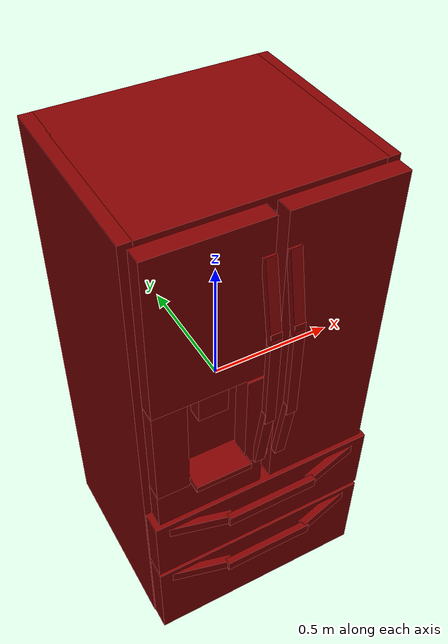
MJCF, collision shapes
<mujoco model="model">
  <compiler angle="radian"/>
  <asset>
    <mesh file="visuals/Body001.obj" name="Body001_vis"/>
    <mesh file="visuals/Body001_Clear.obj" name="Body001_Clear_vis"/>
    <mesh file="visuals/Door001.obj" name="Door001_vis"/>
    <mesh file="visuals/Door002.obj" name="Door002_vis"/>
    <mesh file="visuals/Door002_Clear.obj" name="Door002_Clear_vis"/>
    <mesh file="visuals/Drawer001.obj" name="Drawer001_vis"/>
    <mesh file="visuals/Drawer002.obj" name="Drawer002_vis"/>
    <mesh file="visuals/Drawer003.obj" name="Drawer003_vis"/>
    <texture file="visuals/T_BC001.png" name="Body001_material" type="2d"/>
    <material name="Body001_material" rgba="1 1 1 1.0" texture="Body001_material" shininess="0.2512328028678894" specular="0.3103448502657381"/>
    <material name="Body001_Clear_material" rgba="0.7829207181930542 0.7829207181930542 0.7829207181930542 0.5" shininess="0.2512328028678894" specular="0.3103448502657381"/>
    <texture file="visuals/T_BC001.png" name="Door001_material" type="2d"/>
    <material name="Door001_material" rgba="1 1 1 1.0" texture="Door001_material" shininess="0.2512328028678894" specular="0.3103448502657381"/>
    <texture file="visuals/T_BC001.png" name="Door002_material" type="2d"/>
    <material name="Door002_material" rgba="1 1 1 1.0" texture="Door002_material" shininess="0.2512328028678894" specular="0.3103448502657381"/>
    <material name="Door002_Clear_material" rgba="0.7829207181930542 0.7829207181930542 0.7829207181930542 0.5" shininess="0.2512328028678894" specular="0.3103448502657381"/>
    <texture file="visuals/T_BC001.png" name="Drawer001_material" type="2d"/>
    <material name="Drawer001_material" rgba="1 1 1 1.0" texture="Drawer001_material" shininess="0.2512328028678894" specular="0.3103448502657381"/>
    <texture file="visuals/T_BC001.png" name="Drawer002_material" type="2d"/>
    <material name="Drawer002_material" rgba="1 1 1 1.0" texture="Drawer002_material" shininess="0.2512328028678894" specular="0.3103448502657381"/>
    <texture file="visuals/T_BC001.png" name="Drawer003_material" type="2d"/>
    <material name="Drawer003_material" rgba="1 1 1 1.0" texture="Drawer003_material" shininess="0.2512328028678894" specular="0.3103448502657381"/>
  </asset>
  <default>
    <default class="visual">
      <geom conaffinity="0" contype="0" group="1" type="mesh"/>
    </default>
    <default class="collision">
      <geom group="0" rgba="0.5 0 0 0.5"/>
    </default>
    <default class="spawn">
      <geom group="0" rgba="1 1 1 0.5" contype="0" conaffinity="0"/>
      <site group="0" rgba="1 1 1 0.5"/>
    </default>
    <default class="region">
      <geom group="1" conaffinity="0" contype="0" rgba="0 1 0 0"/>
    </default>
  </default>
  <worldbody>
    <body>
      <body name="object">
        <geom mesh="Body001_vis" type="mesh" solimp="0.998 0.998 0.001" solref="0.001 1" density="100" friction="0.95 0.3 0.1" class="visual" material="Body001_material"/>
        <geom class="collision" type="box" pos="-0.43239063024520874 0.0789387971162796 2.281851152474701e-09" size="0.025050994008779526 0.37569648027420044 0.9743537306785583" quat="1.0 0.0 0.0 0.0"/>
        <geom class="collision" type="box" pos="0.43343523144721985 0.0789387971162796 2.281851152474701e-09" size="0.024006403982639313 0.37569648027420044 0.9743537306785583" quat="1.0 0.0 0.0 0.0"/>
        <geom class="collision" type="box" pos="0.002809131983667612 0.35418015718460083 2.281851152474701e-09" size="0.4140954911708832 0.10045510530471802 0.9743537306785583" quat="1.0 0.0 0.0 0.0"/>
        <geom class="collision" type="box" pos="0.0028091389685869217 0.0789387971162796 0.9467322826385498" size="0.4140954911708832 0.37569648027420044 0.027621673420071602" quat="1.0 0.0 0.0 0.0"/>
        <geom class="collision" type="box" pos="0.002809138037264347 0.0789387971162796 -0.21346165239810944" size="0.4140954911708832 0.37569648027420044 0.03919969126582146" quat="1.0 0.0 0.0 0.0"/>
        <geom class="collision" type="box" pos="0.002809138037264347 0.0789387971162796 -0.5391851663589478" size="0.4140954911708832 0.37569648027420044 0.04141000285744667" quat="1.0 0.0 0.0 0.0"/>
        <geom class="collision" type="box" pos="0.0028091371059417725 0.0789387971162796 -0.9519866108894348" size="0.4140954911708832 0.37569648027420044 0.022367125377058983" quat="1.0 0.0 0.0 0.0"/>
        <geom class="collision" type="box" pos="-0.3977801501750946 0.02478324994444847 0.5585342645645142" size="0.0075620138086378574 0.23571060597896576 0.027275606989860535" quat="1.0 0.0 0.0 0.0"/>
        <geom class="collision" type="box" pos="-0.3977801501750946 0.02478325366973877 0.3838809132575989" size="0.0075620138086378574 0.23571060597896576 0.027275606989860535" quat="1.0 0.0 0.0 0.0"/>
        <geom class="collision" type="box" pos="-0.3977801501750946 0.02478325366973877 -0.0023946017026901245" size="0.0075620138086378574 0.23571060597896576 0.027275606989860535" quat="1.0 0.0 0.0 0.0"/>
        <geom class="collision" type="box" pos="-0.3977801501750946 0.02478324994444847 0.17225873470306396" size="0.0075620138086378574 0.23571060597896576 0.027275606989860535" quat="1.0 0.0 0.0 0.0"/>
        <geom class="collision" type="box" pos="0.39763379096984863 0.02478324994444847 0.17225873470306396" size="0.0075620138086378574 0.23571060597896576 0.027275606989860535" quat="1.0 0.0 0.0 0.0"/>
        <geom class="collision" type="box" pos="0.39763379096984863 0.02478325366973877 -0.0023946017026901245" size="0.0075620138086378574 0.23571060597896576 0.027275606989860535" quat="1.0 0.0 0.0 0.0"/>
        <geom class="collision" type="box" pos="0.39763379096984863 0.02478325366973877 0.3838809132575989" size="0.0075620138086378574 0.23571060597896576 0.027275606989860535" quat="1.0 0.0 0.0 0.0"/>
        <geom class="collision" type="box" pos="0.39763379096984863 0.02478324994444847 0.5585342645645142" size="0.0075620138086378574 0.23571060597896576 0.027275606989860535" quat="1.0 0.0 0.0 0.0"/>
        <geom class="collision" type="box" pos="-0.00038769468665122986 0.02478324994444847 0.5585342645645142" size="0.0075620138086378574 0.23571060597896576 0.027275606989860535" quat="1.0 0.0 0.0 0.0"/>
        <geom class="collision" type="box" pos="-0.0003876984119415283 0.02478325366973877 0.17134985327720642" size="0.0075620138086378574 0.23571060597896576 0.027275606989860535" quat="1.0 0.0 0.0 0.0"/>
        <geom class="collision" type="box" pos="0.0028091389685869217 -0.0073231663554906845 0.9075626134872437" size="0.15944154560565948 0.160664901137352 0.019210800528526306" quat="1.0 0.0 0.0 0.0"/>
        <body name="Body001_Clear">
          <geom mesh="Body001_Clear_vis" type="mesh" solimp="0.998 0.998 0.001" solref="0.001 1" density="100" friction="0.95 0.3 0.1" class="visual" material="Body001_Clear_material"/>
          <geom class="collision" type="box" pos="0.0006654927274212241 0.05615266412496567 0.5888007879257202" size="0.40937232971191406 0.19231247901916504 0.005514178425073624" quat="1.0 0.0 0.0 0.0"/>
          <geom class="collision" type="box" pos="0.0006654927274212241 0.05615266412496567 0.20450350642204285" size="0.40937232971191406 0.19231247901916504 0.005514178425073624" quat="1.0 0.0 0.0 0.0"/>
        </body>
        <body name="Door001">
          <joint axis="0.0 0.0 -1.0" pos="-0.40305250883102417 -0.34666505455970764 0.37841489911079407" limited="true" name="Door001_joint" range="0.0 1.5707963267948966" type="hinge" damping="1" frictionloss="1" armature=".01" stiffness="0.05"/>
          <geom mesh="Door001_vis" type="mesh" solimp="0.998 0.998 0.001" solref="0.001 1" density="100" friction="0.95 0.3 0.1" class="visual" material="Door001_material"/>
          <geom class="collision" type="box" pos="-0.22949627041816711 -0.3516943156719208 0.6658487319946289" size="0.20845761895179749 0.03155607730150223 0.3085051476955414" quat="1.0 0.0 0.0 0.0"/>
          <geom class="collision" type="box" pos="-0.043255966156721115 -0.4387055039405823 0.39825060963630676" size="0.020025629550218582 0.012181313708424568 0.20290839672088623" quat="1.0 0.0 0.0 0.0"/>
          <geom class="collision" type="box" pos="-0.04368552938103676 -0.4142951965332031 0.6992678642272949" size="0.15277734398841858 0.012184272520244122 0.020025623962283134" quat="0.7036940455436707 -0.06938757747411728 0.7036941051483154 -0.06938757747411728"/>
          <geom class="collision" type="box" pos="-0.04342835023999214 -0.4153255522251129 0.08840882033109665" size="0.15271838009357452 0.012182695791125298 0.020025666803121567" quat="0.705168604850769 0.05231887102127075 0.7051685452461243 0.05231887102127075"/>
          <geom class="collision" type="box" pos="-0.22737178206443787 -0.2903779447078705 0.37775924801826477" size="0.14489077031612396 0.020536476746201515 0.5126675367355347" quat="1.0 0.0 0.0 0.0"/>
          <geom class="collision" type="box" pos="-0.22983205318450928 -0.2701058089733124 0.6600713729858398" size="0.16895322501659393 0.046253252774477005 0.24985185265541077" quat="1.0 0.0 0.0 0.0"/>
          <geom class="collision" type="box" pos="-0.22984567284584045 -0.35054901242256165 -0.13871297240257263" size="0.20880651473999023 0.030410680919885635 0.08287671208381653" quat="1.0 0.0 0.0 0.0"/>
          <geom class="collision" type="box" pos="-0.3748109042644501 -0.35059499740600586 0.14636197686195374" size="0.0626794621348381 0.03045680746436119 0.2097291201353073" quat="1.0 0.0 0.0 0.0"/>
          <geom class="collision" type="box" pos="-0.052935484796762466 -0.35635867714881897 0.14636196196079254" size="0.04649600014090538 0.03622039034962654 0.20972852408885956" quat="1.0 0.0 0.0 0.0"/>
          <geom class="collision" type="box" pos="-0.2095235139131546 -0.33079081773757935 0.3130360245704651" size="0.054677631705999374 0.035663824528455734 0.07370862364768982" quat="1.0 0.0 0.0 0.0"/>
          <geom class="collision" type="box" pos="-0.20344950258731842 -0.3709101676940918 -0.026633242145180702" size="0.10819727182388306 0.06406967341899872 0.0124518359079957" quat="1.0 0.0 0.0 0.0"/>
          <geom class="collision" type="box" pos="-0.2095235139131546 -0.3115566074848175 0.21992382407188416" size="0.02860577218234539 0.014528387226164341 0.030026836320757866" quat="1.0 0.0 0.0 0.0"/>
          <geom class="collision" type="box" pos="-0.23664847016334534 -0.21018823981285095 0.13197873532772064" size="0.14483046531677246 0.0038390583358705044 0.044328365474939346" quat="1.0 0.0 0.0 0.0"/>
          <geom class="collision" type="box" pos="-0.23664847016334534 -0.24343398213386536 0.09350551664829254" size="0.14483046531677246 0.030184507369995117 0.005856771487742662" quat="1.0 0.0 0.0 0.0"/>
          <geom class="collision" type="box" pos="-0.37607118487358093 -0.2415694296360016 0.13457582890987396" size="0.005407749209553003 0.03460775688290596 0.04692563787102699" quat="1.0 0.0 0.0 0.0"/>
          <geom class="collision" type="box" pos="-0.09749902784824371 -0.2415694296360016 0.13457582890987396" size="0.005407749209553003 0.03460775688290596 0.046925727277994156" quat="1.0 0.0 0.0 0.0"/>
        </body>
        <body name="Door002">
          <joint axis="0.0 0.0 1.0" pos="0.41050735116004944 -0.3474642038345337 0.3784147799015045" limited="true" name="Door002_joint" range="0.0 1.5707963267948966" type="hinge" damping="1" frictionloss="1" armature=".01" stiffness="0.05"/>
          <geom mesh="Door002_vis" type="mesh" solimp="0.998 0.998 0.001" solref="0.001 1" density="100" friction="0.95 0.3 0.1" class="visual" material="Door002_material"/>
          <geom class="collision" type="box" pos="0.2233191877603531 -0.3516943156719208 0.37861859798431396" size="0.20651549100875854 0.03155607730150223 0.5957353115081787" quat="1.0 0.0 0.0 0.0"/>
          <geom class="collision" type="box" pos="0.04022764414548874 -0.4387055039405823 0.39825060963630676" size="0.020025629550218582 0.012181301601231098 0.20290815830230713" quat="1.0 0.0 0.0 0.0"/>
          <geom class="collision" type="box" pos="0.0397980622947216 -0.4142951965332031 0.6992678642272949" size="0.15277734398841858 0.012184272520244122 0.020025623962283134" quat="0.7036940455436707 -0.06938757747411728 0.7036941051483154 -0.06938757747411728"/>
          <geom class="collision" type="box" pos="0.04005524143576622 -0.4153255522251129 0.08840882033109665" size="0.15271838009357452 0.012182695791125298 0.020025666803121567" quat="0.705168604850769 0.05231887102127075 0.7051685452461243 0.05231887102127075"/>
          <geom class="collision" type="box" pos="0.23107843101024628 -0.28338780999183655 0.9090375900268555" size="0.16718634963035583 0.03298664465546608 0.00502949021756649" quat="1.0 0.0 0.0 0.0"/>
          <geom class="collision" type="box" pos="0.23107843101024628 -0.2828749418258667 -0.12705786526203156" size="0.16718634963035583 0.03298664465546608 0.010212471708655357" quat="1.0 0.0 0.0 0.0"/>
          <geom class="collision" type="box" pos="0.07154716551303864 -0.2828749418258667 0.3933747708797455" size="0.007655085995793343 0.03298664465546608 0.5100640654563904" quat="1.0 0.0 0.0 0.0"/>
          <geom class="collision" type="box" pos="0.3910381495952606 -0.2828749418258667 0.3933747708797455" size="0.007655085995793343 0.03298664465546608 0.5100640654563904" quat="1.0 0.0 0.0 0.0"/>
          <body name="Door002_Clear">
            <geom mesh="Door002_Clear_vis" type="mesh" solimp="0.998 0.998 0.001" solref="0.001 1" density="100" friction="0.95 0.3 0.1" class="visual" material="Door002_Clear_material"/>
            <geom class="collision" type="box" pos="0.23141421377658844 -0.30522629618644714 0.25686919689178467" size="0.15337137877941132 0.0015188781544566154 0.037437066435813904" quat="1.0 0.0 0.0 0.0"/>
            <geom class="collision" type="box" pos="0.23141421377658844 -0.17862524092197418 0.25157129764556885" size="0.14881138503551483 0.0015188833931460977 0.03213917091488838" quat="1.0 0.0 0.0 0.0"/>
            <geom class="collision" type="box" pos="0.08318133652210236 -0.24085068702697754 0.2540512681007385" size="0.0035103464033454657 0.06575389951467514 0.034619156271219254" quat="1.0 0.0 0.0 0.0"/>
            <geom class="collision" type="box" pos="0.38055282831192017 -0.24085068702697754 0.2540512681007385" size="0.0035103464033454657 0.06575407087802887 0.034619156271219254" quat="1.0 0.0 0.0 0.0"/>
            <geom class="collision" type="box" pos="0.23141421377658844 -0.30522629618644714 0.5099889039993286" size="0.15337137877941132 0.0015188992256298661 0.037437066435813904" quat="1.0 0.0 0.0 0.0"/>
            <geom class="collision" type="box" pos="0.23141421377658844 -0.17862524092197418 0.5046910047531128" size="0.14881138503551483 0.0015189044643193483 0.03213917091488838" quat="1.0 0.0 0.0 0.0"/>
            <geom class="collision" type="box" pos="0.08318133652210236 -0.24085068702697754 0.5071709156036377" size="0.0035103464033454657 0.06575457751750946 0.034619156271219254" quat="1.0 0.0 0.0 0.0"/>
            <geom class="collision" type="box" pos="0.38055282831192017 -0.24085068702697754 0.5071709156036377" size="0.0035103464033454657 0.06575474888086319 0.034619156271219254" quat="1.0 0.0 0.0 0.0"/>
            <geom class="collision" type="box" pos="0.23141421377658844 -0.17485778033733368 0.8018209934234619" size="0.14881138503551483 0.0015189202968031168 0.03213917091488838" quat="1.0 0.0 0.0 0.0"/>
            <geom class="collision" type="box" pos="0.08312533795833588 -0.22019241750240326 0.8043009042739868" size="0.004710578825324774 0.08195492625236511 0.034619156271219254" quat="1.0 0.0 0.0 0.0"/>
            <geom class="collision" type="box" pos="0.38220059871673584 -0.23708322644233704 0.8043009042739868" size="0.0042063514702022076 0.06575525552034378 0.034619156271219254" quat="1.0 0.0 0.0 0.0"/>
            <geom class="collision" type="box" pos="0.08312533795833588 -0.2414541393518448 0.8673205375671387" size="0.004710578825324774 0.06069352477788925 0.034619156271219254" quat="1.0 0.0 0.0 0.0"/>
            <geom class="collision" type="box" pos="0.38215941190719604 -0.22019241750240326 0.8043009042739868" size="0.004710578825324774 0.0819554328918457 0.034619156271219254" quat="1.0 0.0 0.0 0.0"/>
            <geom class="collision" type="box" pos="0.38215941190719604 -0.2414541393518448 0.8673205375671387" size="0.004710578825324774 0.06069386005401611 0.034619156271219254" quat="1.0 0.0 0.0 0.0"/>
            <geom class="collision" type="box" pos="0.23264236748218536 -0.21914063394069672 0.7765291929244995" size="0.14480642974376678 0.08300754427909851 0.006220254581421614" quat="1.0 0.0 0.0 0.0"/>
            <geom class="collision" type="box" pos="0.23248694837093353 -0.25190040469169617 0.8969229459762573" size="0.14463713765144348 0.05025099217891693 0.003077739616855979" quat="1.0 0.0 0.0 0.0"/>
            <geom class="collision" type="box" pos="0.23248694837093353 -0.16871346533298492 0.8608671426773071" size="0.05016378313302994 0.0031052634585648775 0.14465102553367615" quat="0.6771653890609741 0.2035851776599884 0.6771655678749084 0.20358510315418243"/>
            <geom class="collision" type="box" pos="0.23233634233474731 -0.14055998623371124 0.7953920364379883" size="0.14463745057582855 0.0031013365369290113 0.025584066286683083" quat="1.0 0.0 0.0 0.0"/>
          </body>
        </body>
        <body name="Drawer001">
          <joint axis="0.0 -1.0 0.0" pos="-0.005647996440529823 0.05027452111244202 -0.07612389326095581" limited="true" name="Drawer001_joint" range="0.0 0.4" type="slide" damping="1" frictionloss="1" armature=".01" stiffness="0.05"/>
          <geom mesh="Drawer001_vis" type="mesh" solimp="0.998 0.998 0.001" solref="0.001 1" density="100" friction="0.95 0.3 0.1" class="visual" material="Drawer001_material"/>
          <geom class="collision" type="box" pos="-0.004154778551310301 -0.11911419779062271 -0.07657558470964432" size="0.31146201491355896 0.001116919331252575 0.0833430364727974" quat="1.0 0.0 0.0 0.0"/>
          <geom class="collision" type="box" pos="-0.31593266129493713 0.013825430534780025 -0.07657558470964432" size="0.0027079342398792505 0.1340569406747818 0.0833427757024765" quat="1.0 0.0 0.0 0.0"/>
          <geom class="collision" type="box" pos="-0.3142402172088623 0.19368098676204681 -0.045568037778139114" size="0.0010154787451028824 0.04579859972000122 0.05233495682477951" quat="1.0 0.0 0.0 0.0"/>
          <geom class="collision" type="box" pos="0.3062100410461426 0.013825430534780025 -0.07657558470964432" size="0.0010154787451028824 0.1340569406747818 0.08334224671125412" quat="1.0 0.0 0.0 0.0"/>
          <geom class="collision" type="box" pos="0.3062100410461426 0.19368098676204681 -0.045568037778139114" size="0.0010154787451028824 0.04579859972000122 0.05233443155884743" quat="1.0 0.0 0.0 0.0"/>
          <geom class="collision" type="box" pos="-0.004555138293653727 0.23749645054340363 -0.02237585559487343" size="0.3110615909099579 0.003947245888411999 0.029133088886737823" quat="1.0 0.0 0.0 0.0"/>
          <geom class="collision" type="box" pos="-0.004555138293653727 0.18903762102127075 -0.09648250043392181" size="0.3110615909099579 0.004659752827137709 0.06305789202451706" quat="0.9106131196022034 -0.413259893655777 0.0 0.0"/>
          <geom class="collision" type="box" pos="-0.008807596750557423 0.013825464062392712 -0.15572489798069" size="0.3068091571331024 0.1340569406747818 0.0047182803973555565" quat="1.0 0.0 0.0 0.0"/>
          <geom class="collision" type="box" pos="-0.0028760945424437523 -0.12553644180297852 -0.004754754714667797" size="0.3129369020462036 0.007031384389847517 0.008591555058956146" quat="1.0 0.0 0.0 0.0"/>
          <geom class="collision" type="box" pos="0.08558446913957596 0.053703490644693375 -0.07657558470964432" size="0.003509779693558812 0.17393501102924347 0.08332950621843338" quat="1.0 0.0 0.0 0.0"/>
          <geom class="collision" type="box" pos="-0.08450005203485489 0.053703490644693375 -0.07657558470964432" size="0.003509779693558812 0.17393501102924347 0.08332924544811249" quat="1.0 0.0 0.0 0.0"/>
        </body>
        <body name="Drawer002">
          <joint axis="0.0 -1.0 0.0" pos="-5.4772979041217695e-08 -0.12373976409435272 -0.7575267553329468" limited="true" name="Drawer002_joint" range="0.0 0.35" type="slide" damping="1" frictionloss="1" armature=".01" stiffness="0.05"/>
          <geom mesh="Drawer002_vis" type="mesh" solimp="0.998 0.998 0.001" solref="0.001 1" density="100" friction="0.95 0.3 0.1" class="visual" material="Drawer002_material"/>
          <geom class="collision" type="box" pos="3.054372427868657e-05 -0.08713424950838089 -0.8673338890075684" size="0.36803707480430603 0.1716613471508026 0.0026693427935242653" quat="1.0 0.0 0.0 0.0"/>
          <geom class="collision" type="box" pos="0.3771754503250122 -0.08636246621608734 -0.7562657594680786" size="0.11312998086214066 0.1807595193386078 0.003186709014698863" quat="0.6727491021156311 0.0 0.7398707270622253 0.0"/>
          <geom class="collision" type="box" pos="-0.3755396008491516 -0.08636246621608734 -0.7562657594680786" size="0.11312998086214066 0.1807595193386078 0.0031867099460214376" quat="0.6727491021156311 -0.0 -0.7398707270622253 -0.0"/>
          <geom class="collision" type="box" pos="-0.00023492240870837122 -0.27136197686195374 -0.7567480802536011" size="0.1127520203590393 0.3740488588809967 0.0035023794043809175" quat="0.4757084846496582 0.5231641530990601 -0.523171067237854 0.4757024049758911"/>
          <geom class="collision" type="box" pos="-0.0002349226560909301 0.0968877375125885 -0.7560099363327026" size="0.11349354684352875 0.3740488588809967 0.0035023787058889866" quat="0.4757084846496582 -0.5231641530990601 0.523171067237854 0.4757024049758911"/>
          <geom class="collision" type="box" pos="-1.3189855962991714e-07 -0.34826090931892395 -0.7575268745422363" size="0.45744144916534424 0.04144240915775299 0.19901543855667114" quat="1.0 0.0 0.0 0.0"/>
          <geom class="collision" type="box" pos="-0.0030822562985122204 -0.4421125054359436 -0.6056478023529053" size="0.18589089810848236 0.013058767654001713 0.022616099566221237" quat="1.0 0.0 0.0 0.0"/>
          <geom class="collision" type="box" pos="-0.30894798040390015 -0.39824309945106506 -0.6059889793395996" size="0.14072267711162567 0.014652024023234844 0.02227095142006874" quat="0.9923864603042603 0.0 0.0 -0.12316303700208664"/>
          <geom class="collision" type="box" pos="0.30305591225624084 -0.3985201418399811 -0.6056209802627563" size="0.14072267711162567 0.01493772678077221 0.022638944908976555" quat="0.9923864006996155 0.0 0.0 0.12316328287124634"/>
        </body>
        <body name="Drawer003">
          <joint axis="0.0 -1.0 0.0" pos="-2.463909076766413e-08 -0.12325919419527054 -0.38834065198898315" limited="true" name="Drawer003_joint" range="0.0 0.35" type="slide" damping="1" frictionloss="1" armature=".01" stiffness="0.05"/>
          <geom mesh="Drawer003_vis" type="mesh" solimp="0.998 0.998 0.001" solref="0.001 1" density="100" friction="0.95 0.3 0.1" class="visual" material="Drawer003_material"/>
          <geom class="collision" type="box" pos="3.0528928618878126e-05 -0.08713424950838089 -0.4784672260284424" size="0.3680381774902344 0.17166195809841156 0.0026693439576774836" quat="1.0 0.0 0.0 0.0"/>
          <geom class="collision" type="box" pos="0.37449005246162415 -0.08636246621608734 -0.39911285042762756" size="0.08224063366651535 0.1807595193386078 0.0031867094803601503" quat="0.6727491021156311 0.0 0.7398707270622253 0.0"/>
          <geom class="collision" type="box" pos="-0.37285420298576355 -0.08636246621608734 -0.39911285042762756" size="0.08224063366651535 0.1807595193386078 0.0031867094803601503" quat="0.6727491021156311 -0.0 -0.7398707270622253 -0.0"/>
          <geom class="collision" type="box" pos="-0.00023492253967560828 -0.26845458149909973 -0.39911285042762756" size="0.08231815695762634 0.3740488588809967 0.0035023789387196302" quat="0.4757084846496582 0.5231641530990601 -0.523171067237854 0.4757024049758911"/>
          <geom class="collision" type="box" pos="-0.00023492253967560828 0.09390950202941895 -0.39911285042762756" size="0.08231815695762634 0.3740488588809967 0.0035023789387196302" quat="0.4757084846496582 -0.5231641530990601 0.523171067237854 0.4757024049758911"/>
          <geom class="collision" type="box" pos="0.0 -0.34782081842422485 -0.388280987739563" size="0.45744162797927856 0.04100235179066658 0.1508244276046753" quat="1.0 0.0 0.0 0.0"/>
          <geom class="collision" type="box" pos="-0.0030822562985122204 -0.4416618049144745 -0.28972965478897095" size="0.18589089810848236 0.012608075514435768 0.021860849112272263" quat="1.0 0.0 0.0 0.0"/>
          <geom class="collision" type="box" pos="-0.30886685848236084 -0.3979213237762451 -0.28972965478897095" size="0.14072267711162567 0.01432017795741558 0.021856945008039474" quat="0.9923864603042603 0.0 0.0 -0.12316303700208664"/>
          <geom class="collision" type="box" pos="0.30295634269714355 -0.39812520146369934 -0.28972965478897095" size="0.14072267711162567 0.014530442655086517 0.021856945008039474" quat="0.9923864006996155 0.0 0.0 0.12316328287124634"/>
        </body>
        <geom class="region" name="reg_main" type="box" pos="-7.450580596923828e-09 0.03246614336967468 0.0" size="0.45744162797927856 0.42216944694519043 0.9743539094924927"/>
      </body>
    </body>
  </worldbody>
  <actuator>
    <motor name="Door001_joint_actuator" joint="Door001_joint" gear="50"/>
    <motor name="Door002_joint_actuator" joint="Door002_joint" gear="50"/>
    <motor name="Drawer001_joint_actuator" joint="Drawer001_joint" gear="50"/>
    <motor name="Drawer002_joint_actuator" joint="Drawer002_joint" gear="50"/>
    <motor name="Drawer003_joint_actuator" joint="Drawer003_joint" gear="50"/>
  </actuator>
</mujoco>
